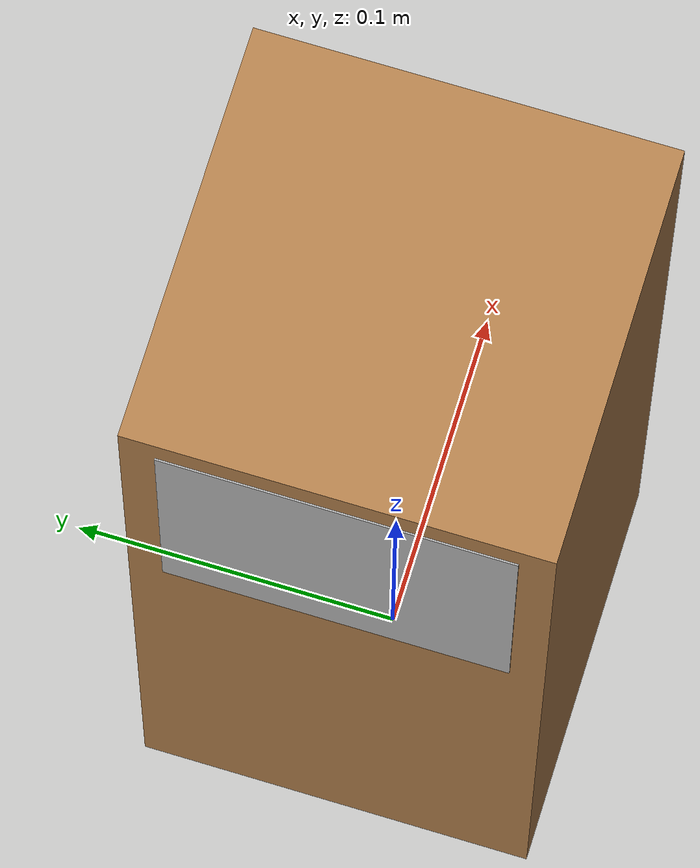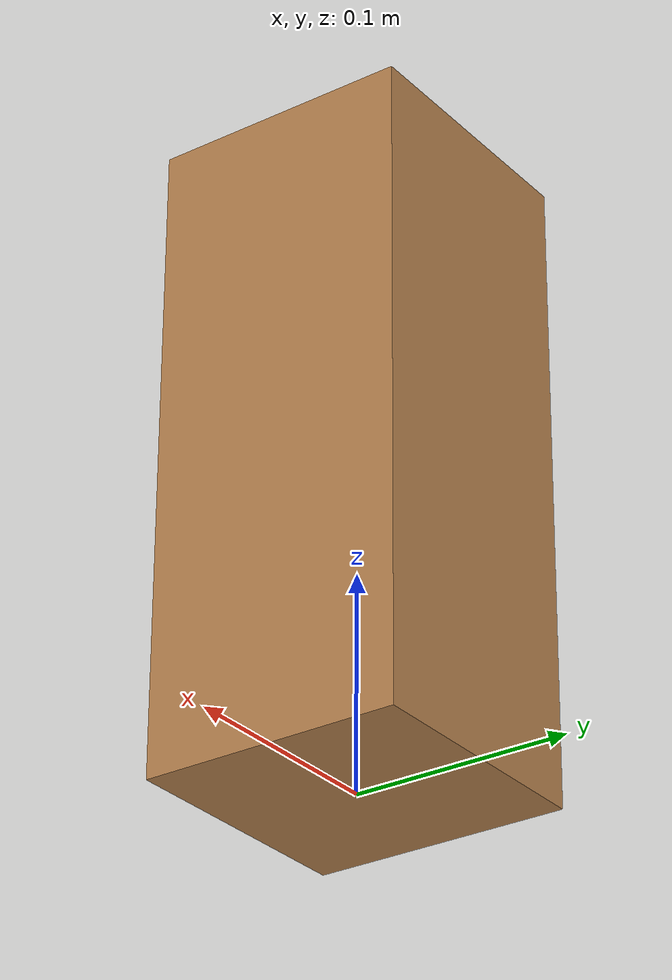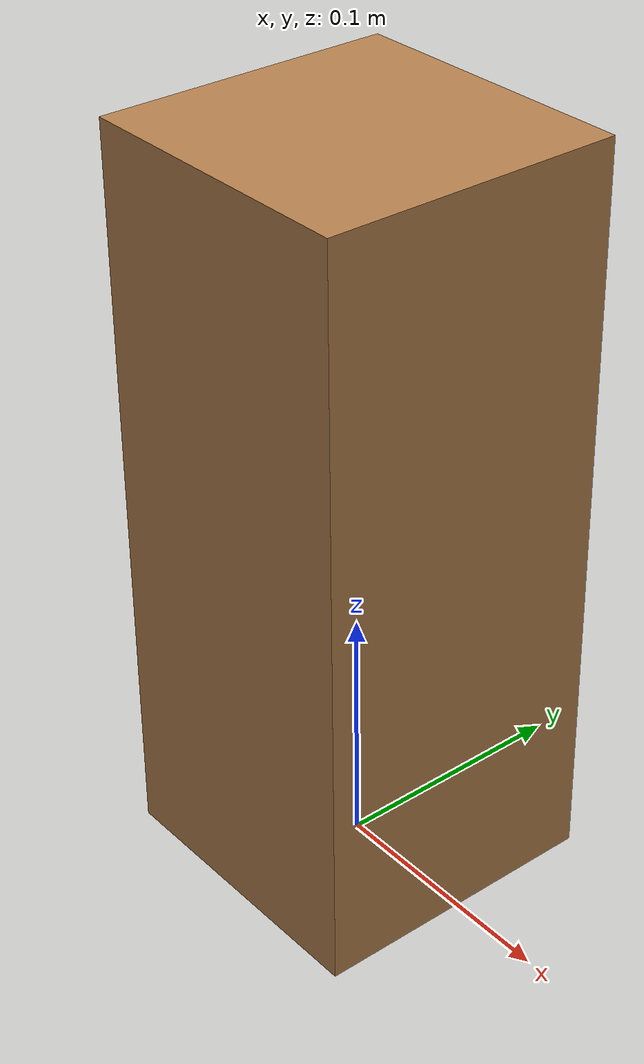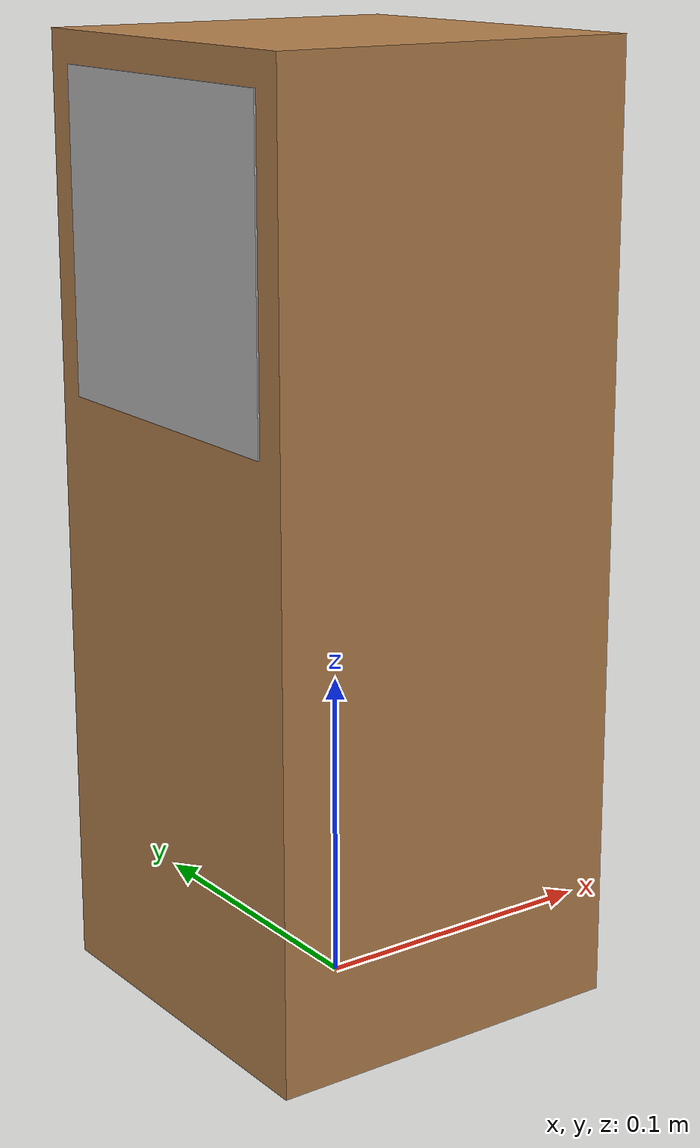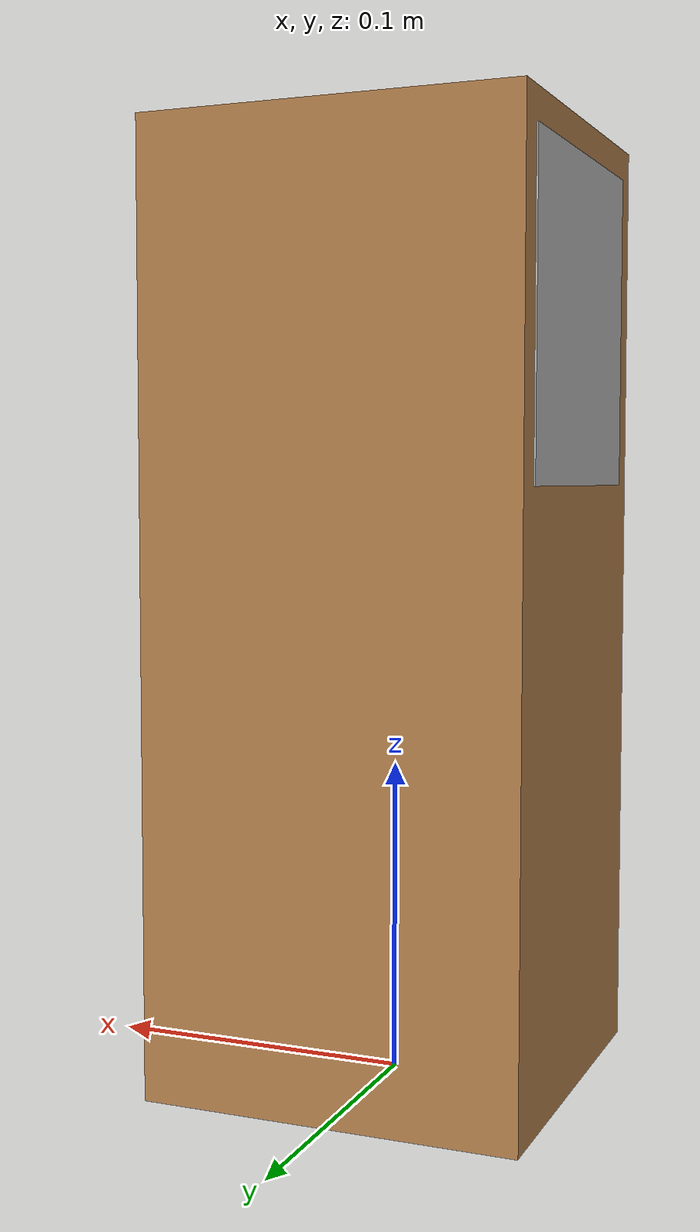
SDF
<?xml version="1.0" ?>
<sdf version="1.5">
  <model name="aruco_column_6x6_100mm_42">
    <link name="link">
      <pose>0 0 0.15 0 0 0</pose>
      <inertial>
        <mass>1</mass>
        <inertia>
          <ixx>1</ixx>
          <ixy>0</ixy>
          <ixz>0</ixz>
          <iyy>1</iyy>
          <iyz>0</iyz>
          <izz>1</izz>
        </inertia>
      </inertial>

      <collision name="collision">
        <geometry>
          <box>
            <size>0.12 0.12 0.3</size>
          </box>
        </geometry>
        <surface>
          <contact>
            <!-- Red Pine coefficients for longitudinal axis of the wood
                 according to:
                 http://www.fpl.fs.fed.us/documnts/fplgtr/fplgtr113/ch04.pdf -->
            <poissons_ratio>0.347</poissons_ratio>
            <elastic_modulus>8.8e+09</elastic_modulus>
            <ode>
              <kp>100000</kp>
              <kd>1</kd>
              <max_vel>1.0</max_vel>
              <min_depth>0.001</min_depth>
            </ode>
          </contact>
          <friction>
            <torsional>
              <coefficient>1.0</coefficient>
              <use_patch_radius>0</use_patch_radius>
              <surface_radius>0.05</surface_radius>
            </torsional>
          </friction>
        </surface>
      </collision>

      <visual name="visual">
        <geometry>
          <box>
            <size>0.12 0.12 0.3</size>
          </box>
        </geometry>
        <material>
          <script>
            <uri>file://media/materials/scripts/gazebo.material</uri>
            <name>Gazebo/Wood</name>
          </script>
        </material>
      </visual>
    </link>

    <link name='aruco_6x6_100mm_42::main'>
      <pose relative_to='aruco_6x6_100mm_42::__model__'>0 0 0 0 -0 0</pose>
      <visual name='main_Visual'>
        <geometry>
          <box>
            <size>0.1 0.1 0.001</size>
          </box>
        </geometry>
        <material>
          <script>
            <uri>file://media/materials/scripts</uri>
            <uri>file://media/materials/textures</uri>
            <name>aruco_6x6_100mm_42</name>
          </script>
        </material>
      </visual>
      <self_collide>0</self_collide>
      <inertial>
        <pose>0 0 0 0 -0 0</pose>
        <inertia>
          <ixx>1</ixx>
          <ixy>0</ixy>
          <ixz>0</ixz>
          <iyy>1</iyy>
          <iyz>0</iyz>
          <izz>1</izz>
        </inertia>
        <mass>1</mass>
      </inertial>
      <enable_wind>0</enable_wind>
      <kinematic>0</kinematic>
    </link>

    <frame name='aruco_6x6_100mm_42::__model__' attached_to='aruco_6x6_100mm_42::main'>
      <pose relative_to='__model__'>-0.06 0 0.24 0 1.5708 0</pose>
    </frame>

    <joint name='aruco_6x6_100mm_42_joint' type='fixed'>
      <child>aruco_6x6_100mm_42::main</child>
      <parent>link</parent>
    </joint>
  </model>
</sdf>
